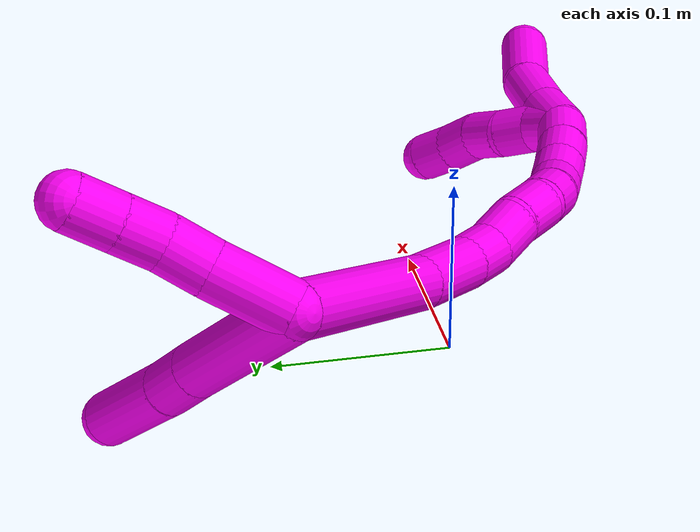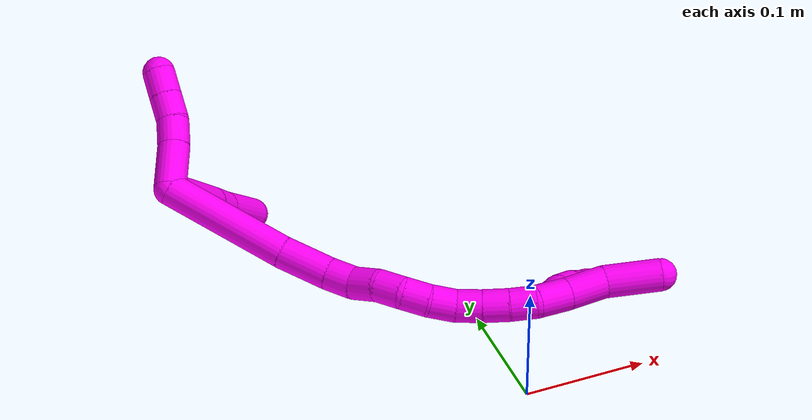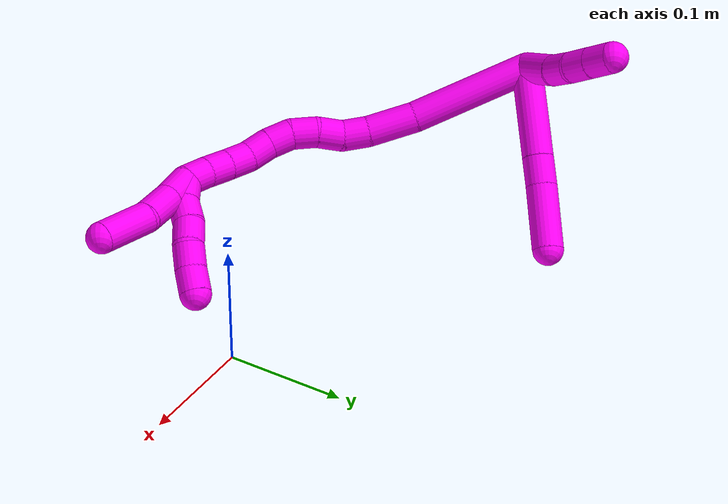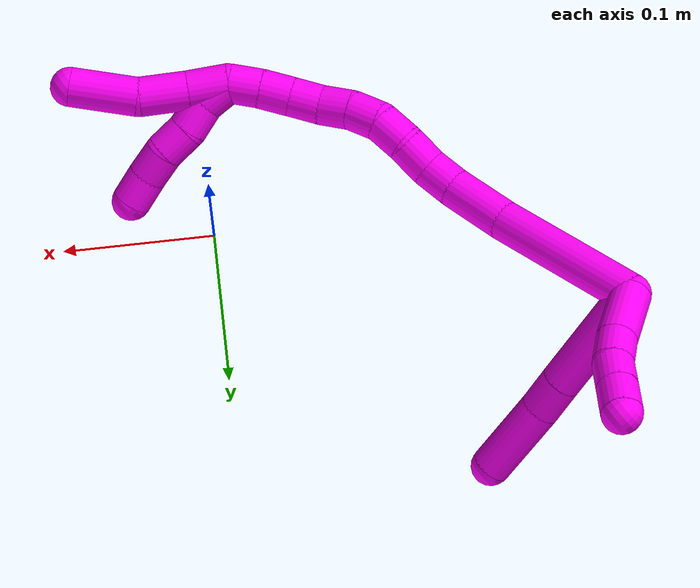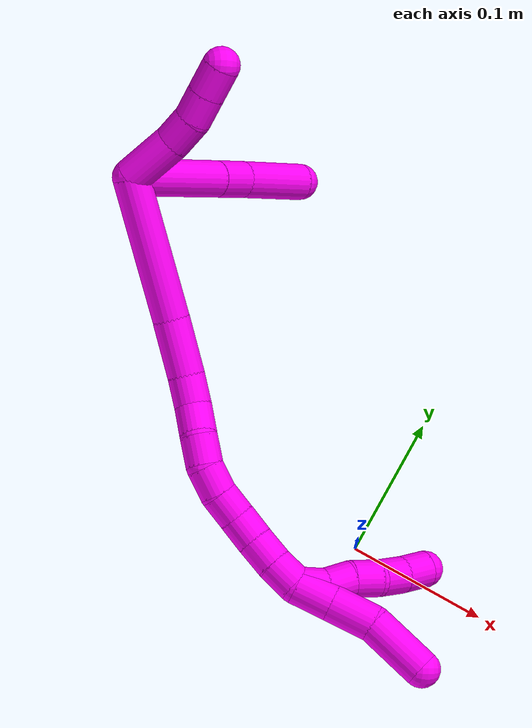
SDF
<sdf version="1.7">
 <world name="default">
  <model name="10">
   <static>0</static>
   <link name="10">
    <collision name="collision-cylinder-e_1_2_8">
     <pose>-0.012373 -0.009 -0.033911 2.88218 -0.339056 -1.83925</pose>
     <geometry><cylinder><radius>0.0125</radius><length>0.074405</length></cylinder></geometry>
     <surface>
      <friction><ode><mu>1.16</mu><mu2>1.16</mu2><slip1>0</slip1><slip2>0</slip2></ode></friction>
      <contact><ode><kp>1e+06</kp><kd>1</kd><max_vel>0</max_vel><min_depth>0.001</min_depth></ode></contact>
     </surface>
    </collision>
    <visual name="visual-cylinder-e_1_2_8">
     <pose>-0.012373 -0.009 -0.033911 2.88218 -0.339056 -1.83925</pose>
     <geometry><cylinder><radius>0.0125</radius><length>0.074405</length></cylinder></geometry>
     <material><ambient>1 0 0.964706 1</ambient></material>
    </visual>
    <collision name="collision-cylinder-e_2_8_9">
     <pose>-0.0289 -0.021053 -0.07847 2.86235 -0.358699 -1.82277</pose>
     <geometry><cylinder><radius>0.0125</radius><length>0.023662</length></cylinder></geometry>
     <surface>
      <friction><ode><mu>1.16</mu><mu2>1.16</mu2><slip1>0</slip1><slip2>0</slip2></ode></friction>
      <contact><ode><kp>1e+06</kp><kd>1</kd><max_vel>0</max_vel><min_depth>0.001</min_depth></ode></contact>
     </surface>
    </collision>
    <visual name="visual-cylinder-e_2_8_9">
     <pose>-0.0289 -0.021053 -0.07847 2.86235 -0.358699 -1.82277</pose>
     <geometry><cylinder><radius>0.0125</radius><length>0.023662</length></cylinder></geometry>
     <material><ambient>1 0 0.964706 1</ambient></material>
    </visual>
    <collision name="collision-cylinder-e_3_9_6">
     <pose>-0.040765 -0.030128 -0.113172 2.89627 -0.301511 -1.77811</pose>
     <geometry><cylinder><radius>0.0125</radius><length>0.051933</length></cylinder></geometry>
     <surface>
      <friction><ode><mu>1.16</mu><mu2>1.16</mu2><slip1>0</slip1><slip2>0</slip2></ode></friction>
      <contact><ode><kp>1e+06</kp><kd>1</kd><max_vel>0</max_vel><min_depth>0.001</min_depth></ode></contact>
     </surface>
    </collision>
    <visual name="visual-cylinder-e_3_9_6">
     <pose>-0.040765 -0.030128 -0.113172 2.89627 -0.301511 -1.77811</pose>
     <geometry><cylinder><radius>0.0125</radius><length>0.051933</length></cylinder></geometry>
     <material><ambient>1 0 0.964706 1</ambient></material>
    </visual>
    <collision name="collision-cylinder-e_1_2_10">
     <pose>-0.001131 0.015095 -0.010786 -2.19123 -0.060868 0.118204</pose>
     <geometry><cylinder><radius>0.0125</radius><length>0.037174</length></cylinder></geometry>
     <surface>
      <friction><ode><mu>1.16</mu><mu2>1.16</mu2><slip1>0</slip1><slip2>0</slip2></ode></friction>
      <contact><ode><kp>1e+06</kp><kd>1</kd><max_vel>0</max_vel><min_depth>0.001</min_depth></ode></contact>
     </surface>
    </collision>
    <visual name="visual-cylinder-e_1_2_10">
     <pose>-0.001131 0.015095 -0.010786 -2.19123 -0.060868 0.118204</pose>
     <geometry><cylinder><radius>0.0125</radius><length>0.037174</length></cylinder></geometry>
     <material><ambient>1 0 0.964706 1</ambient></material>
    </visual>
    <collision name="collision-cylinder-e_2_10_11">
     <pose>-0.002846 0.039858 -0.026243 -2.02076 -0.054353 0.086582</pose>
     <geometry><cylinder><radius>0.0125</radius><length>0.021506</length></cylinder></geometry>
     <surface>
      <friction><ode><mu>1.16</mu><mu2>1.16</mu2><slip1>0</slip1><slip2>0</slip2></ode></friction>
      <contact><ode><kp>1e+06</kp><kd>1</kd><max_vel>0</max_vel><min_depth>0.001</min_depth></ode></contact>
     </surface>
    </collision>
    <visual name="visual-cylinder-e_2_10_11">
     <pose>-0.002846 0.039858 -0.026243 -2.02076 -0.054353 0.086582</pose>
     <geometry><cylinder><radius>0.0125</radius><length>0.021506</length></cylinder></geometry>
     <material><ambient>1 0 0.964706 1</ambient></material>
    </visual>
    <collision name="collision-cylinder-e_3_11_12">
     <pose>-0.005515 0.058937 -0.033665 -1.85536 -0.209515 0.278784</pose>
     <geometry><cylinder><radius>0.0125</radius><length>0.020048</length></cylinder></geometry>
     <surface>
      <friction><ode><mu>1.16</mu><mu2>1.16</mu2><slip1>0</slip1><slip2>0</slip2></ode></friction>
      <contact><ode><kp>1e+06</kp><kd>1</kd><max_vel>0</max_vel><min_depth>0.001</min_depth></ode></contact>
     </surface>
    </collision>
    <visual name="visual-cylinder-e_3_11_12">
     <pose>-0.005515 0.058937 -0.033665 -1.85536 -0.209515 0.278784</pose>
     <geometry><cylinder><radius>0.0125</radius><length>0.020048</length></cylinder></geometry>
     <material><ambient>1 0 0.964706 1</ambient></material>
    </visual>
    <collision name="collision-cylinder-e_4_12_5">
     <pose>-0.009802 0.078326 -0.039368 -1.85833 -0.208601 0.278426</pose>
     <geometry><cylinder><radius>0.0125</radius><length>0.021272</length></cylinder></geometry>
     <surface>
      <friction><ode><mu>1.16</mu><mu2>1.16</mu2><slip1>0</slip1><slip2>0</slip2></ode></friction>
      <contact><ode><kp>1e+06</kp><kd>1</kd><max_vel>0</max_vel><min_depth>0.001</min_depth></ode></contact>
     </surface>
    </collision>
    <visual name="visual-cylinder-e_4_12_5">
     <pose>-0.009802 0.078326 -0.039368 -1.85833 -0.208601 0.278426</pose>
     <geometry><cylinder><radius>0.0125</radius><length>0.021272</length></cylinder></geometry>
     <material><ambient>1 0 0.964706 1</ambient></material>
    </visual>
    <collision name="collision-cylinder-e_1_2_13">
     <pose>0.028877 -0.035749 -0.016866 2.01161 0.630941 0.950901</pose>
     <geometry><cylinder><radius>0.0125</radius><length>0.097904</length></cylinder></geometry>
     <surface>
      <friction><ode><mu>1.16</mu><mu2>1.16</mu2><slip1>0</slip1><slip2>0</slip2></ode></friction>
      <contact><ode><kp>1e+06</kp><kd>1</kd><max_vel>0</max_vel><min_depth>0.001</min_depth></ode></contact>
     </surface>
    </collision>
    <visual name="visual-cylinder-e_1_2_13">
     <pose>0.028877 -0.035749 -0.016866 2.01161 0.630941 0.950901</pose>
     <geometry><cylinder><radius>0.0125</radius><length>0.097904</length></cylinder></geometry>
     <material><ambient>1 0 0.964706 1</ambient></material>
    </visual>
    <collision name="collision-cylinder-e_2_13_14">
     <pose>0.071167 -0.084503 -0.039605 1.99502 0.754416 1.10078</pose>
     <geometry><cylinder><radius>0.0125</radius><length>0.039168</length></cylinder></geometry>
     <surface>
      <friction><ode><mu>1.16</mu><mu2>1.16</mu2><slip1>0</slip1><slip2>0</slip2></ode></friction>
      <contact><ode><kp>1e+06</kp><kd>1</kd><max_vel>0</max_vel><min_depth>0.001</min_depth></ode></contact>
     </surface>
    </collision>
    <visual name="visual-cylinder-e_2_13_14">
     <pose>0.071167 -0.084503 -0.039605 1.99502 0.754416 1.10078</pose>
     <geometry><cylinder><radius>0.0125</radius><length>0.039168</length></cylinder></geometry>
     <material><ambient>1 0 0.964706 1</ambient></material>
    </visual>
    <collision name="collision-cylinder-e_3_14_15">
     <pose>0.092765 -0.103668 -0.047862 1.94006 0.891929 1.21832</pose>
     <geometry><cylinder><radius>0.0125</radius><length>0.021037</length></cylinder></geometry>
     <surface>
      <friction><ode><mu>1.16</mu><mu2>1.16</mu2><slip1>0</slip1><slip2>0</slip2></ode></friction>
      <contact><ode><kp>1e+06</kp><kd>1</kd><max_vel>0</max_vel><min_depth>0.001</min_depth></ode></contact>
     </surface>
    </collision>
    <visual name="visual-cylinder-e_3_14_15">
     <pose>0.092765 -0.103668 -0.047862 1.94006 0.891929 1.21832</pose>
     <geometry><cylinder><radius>0.0125</radius><length>0.021037</length></cylinder></geometry>
     <material><ambient>1 0 0.964706 1</ambient></material>
    </visual>
    <collision name="collision-cylinder-e_4_15_16">
     <pose>0.110937 -0.113302 -0.051071 1.80386 1.22737 1.45586</pose>
     <geometry><cylinder><radius>0.0125</radius><length>0.021209</length></cylinder></geometry>
     <surface>
      <friction><ode><mu>1.16</mu><mu2>1.16</mu2><slip1>0</slip1><slip2>0</slip2></ode></friction>
      <contact><ode><kp>1e+06</kp><kd>1</kd><max_vel>0</max_vel><min_depth>0.001</min_depth></ode></contact>
     </surface>
    </collision>
    <visual name="visual-cylinder-e_4_15_16">
     <pose>0.110937 -0.113302 -0.051071 1.80386 1.22737 1.45586</pose>
     <geometry><cylinder><radius>0.0125</radius><length>0.021209</length></cylinder></geometry>
     <material><ambient>1 0 0.964706 1</ambient></material>
    </visual>
    <collision name="collision-cylinder-e_5_16_17">
     <pose>0.129514 -0.122216 -0.053723 1.89492 0.981908 1.27878</pose>
     <geometry><cylinder><radius>0.0125</radius><length>0.020665</length></cylinder></geometry>
     <surface>
      <friction><ode><mu>1.16</mu><mu2>1.16</mu2><slip1>0</slip1><slip2>0</slip2></ode></friction>
      <contact><ode><kp>1e+06</kp><kd>1</kd><max_vel>0</max_vel><min_depth>0.001</min_depth></ode></contact>
     </surface>
    </collision>
    <visual name="visual-cylinder-e_5_16_17">
     <pose>0.129514 -0.122216 -0.053723 1.89492 0.981908 1.27878</pose>
     <geometry><cylinder><radius>0.0125</radius><length>0.020665</length></cylinder></geometry>
     <material><ambient>1 0 0.964706 1</ambient></material>
    </visual>
    <collision name="collision-cylinder-e_6_17_18">
     <pose>0.144879 -0.133294 -0.060284 2.26913 0.743791 1.39342</pose>
     <geometry><cylinder><radius>0.0125</radius><length>0.020005</length></cylinder></geometry>
     <surface>
      <friction><ode><mu>1.16</mu><mu2>1.16</mu2><slip1>0</slip1><slip2>0</slip2></ode></friction>
      <contact><ode><kp>1e+06</kp><kd>1</kd><max_vel>0</max_vel><min_depth>0.001</min_depth></ode></contact>
     </surface>
    </collision>
    <visual name="visual-cylinder-e_6_17_18">
     <pose>0.144879 -0.133294 -0.060284 2.26913 0.743791 1.39342</pose>
     <geometry><cylinder><radius>0.0125</radius><length>0.020005</length></cylinder></geometry>
     <material><ambient>1 0 0.964706 1</ambient></material>
    </visual>
    <collision name="collision-cylinder-e_7_18_19">
     <pose>0.157583 -0.143762 -0.071459 2.49835 0.634896 1.5568</pose>
     <geometry><cylinder><radius>0.0125</radius><length>0.020001</length></cylinder></geometry>
     <surface>
      <friction><ode><mu>1.16</mu><mu2>1.16</mu2><slip1>0</slip1><slip2>0</slip2></ode></friction>
      <contact><ode><kp>1e+06</kp><kd>1</kd><max_vel>0</max_vel><min_depth>0.001</min_depth></ode></contact>
     </surface>
    </collision>
    <visual name="visual-cylinder-e_7_18_19">
     <pose>0.157583 -0.143762 -0.071459 2.49835 0.634896 1.5568</pose>
     <geometry><cylinder><radius>0.0125</radius><length>0.020001</length></cylinder></geometry>
     <material><ambient>1 0 0.964706 1</ambient></material>
    </visual>
    <collision name="collision-cylinder-e_8_19_20">
     <pose>0.171013 -0.151833 -0.083671 2.62966 0.847727 2.09042</pose>
     <geometry><cylinder><radius>0.0125</radius><length>0.020003</length></cylinder></geometry>
     <surface>
      <friction><ode><mu>1.16</mu><mu2>1.16</mu2><slip1>0</slip1><slip2>0</slip2></ode></friction>
      <contact><ode><kp>1e+06</kp><kd>1</kd><max_vel>0</max_vel><min_depth>0.001</min_depth></ode></contact>
     </surface>
    </collision>
    <visual name="visual-cylinder-e_8_19_20">
     <pose>0.171013 -0.151833 -0.083671 2.62966 0.847727 2.09042</pose>
     <geometry><cylinder><radius>0.0125</radius><length>0.020003</length></cylinder></geometry>
     <material><ambient>1 0 0.964706 1</ambient></material>
    </visual>
    <collision name="collision-cylinder-e_9_20_21">
     <pose>0.186199 -0.15775 -0.095252 2.71011 0.876674 2.26692</pose>
     <geometry><cylinder><radius>0.0125</radius><length>0.020002</length></cylinder></geometry>
     <surface>
      <friction><ode><mu>1.16</mu><mu2>1.16</mu2><slip1>0</slip1><slip2>0</slip2></ode></friction>
      <contact><ode><kp>1e+06</kp><kd>1</kd><max_vel>0</max_vel><min_depth>0.001</min_depth></ode></contact>
     </surface>
    </collision>
    <visual name="visual-cylinder-e_9_20_21">
     <pose>0.186199 -0.15775 -0.095252 2.71011 0.876674 2.26692</pose>
     <geometry><cylinder><radius>0.0125</radius><length>0.020002</length></cylinder></geometry>
     <material><ambient>1 0 0.964706 1</ambient></material>
    </visual>
    <collision name="collision-cylinder-e_10_21_1">
     <pose>0.201232 -0.162468 -0.107538 2.83613 0.824839 2.46497</pose>
     <geometry><cylinder><radius>0.0125</radius><length>0.020005</length></cylinder></geometry>
     <surface>
      <friction><ode><mu>1.16</mu><mu2>1.16</mu2><slip1>0</slip1><slip2>0</slip2></ode></friction>
      <contact><ode><kp>1e+06</kp><kd>1</kd><max_vel>0</max_vel><min_depth>0.001</min_depth></ode></contact>
     </surface>
    </collision>
    <visual name="visual-cylinder-e_10_21_1">
     <pose>0.201232 -0.162468 -0.107538 2.83613 0.824839 2.46497</pose>
     <geometry><cylinder><radius>0.0125</radius><length>0.020005</length></cylinder></geometry>
     <material><ambient>1 0 0.964706 1</ambient></material>
    </visual>
    <collision name="collision-cylinder-e_1_1_22">
     <pose>0.208574 -0.165141 -0.123992 3.07839 -0.000494 -0.015636</pose>
     <geometry><cylinder><radius>0.0125</radius><length>0.02</length></cylinder></geometry>
     <surface>
      <friction><ode><mu>1.16</mu><mu2>1.16</mu2><slip1>0</slip1><slip2>0</slip2></ode></friction>
      <contact><ode><kp>1e+06</kp><kd>1</kd><max_vel>0</max_vel><min_depth>0.001</min_depth></ode></contact>
     </surface>
    </collision>
    <visual name="visual-cylinder-e_1_1_22">
     <pose>0.208574 -0.165141 -0.123992 3.07839 -0.000494 -0.015636</pose>
     <geometry><cylinder><radius>0.0125</radius><length>0.02</length></cylinder></geometry>
     <material><ambient>1 0 0.964706 1</ambient></material>
    </visual>
    <collision name="collision-cylinder-e_2_22_23">
     <pose>0.205815 -0.164708 -0.143526 -3.03061 -0.278959 2.38807</pose>
     <geometry><cylinder><radius>0.0125</radius><length>0.02</length></cylinder></geometry>
     <surface>
      <friction><ode><mu>1.16</mu><mu2>1.16</mu2><slip1>0</slip1><slip2>0</slip2></ode></friction>
      <contact><ode><kp>1e+06</kp><kd>1</kd><max_vel>0</max_vel><min_depth>0.001</min_depth></ode></contact>
     </surface>
    </collision>
    <visual name="visual-cylinder-e_2_22_23">
     <pose>0.205815 -0.164708 -0.143526 -3.03061 -0.278959 2.38807</pose>
     <geometry><cylinder><radius>0.0125</radius><length>0.02</length></cylinder></geometry>
     <material><ambient>1 0 0.964706 1</ambient></material>
    </visual>
    <collision name="collision-cylinder-e_3_23_24">
     <pose>0.202334 -0.163963 -0.163049 3.10949 -0.072832 -2.31164</pose>
     <geometry><cylinder><radius>0.0125</radius><length>0.02</length></cylinder></geometry>
     <surface>
      <friction><ode><mu>1.16</mu><mu2>1.16</mu2><slip1>0</slip1><slip2>0</slip2></ode></friction>
      <contact><ode><kp>1e+06</kp><kd>1</kd><max_vel>0</max_vel><min_depth>0.001</min_depth></ode></contact>
     </surface>
    </collision>
    <visual name="visual-cylinder-e_3_23_24">
     <pose>0.202334 -0.163963 -0.163049 3.10949 -0.072832 -2.31164</pose>
     <geometry><cylinder><radius>0.0125</radius><length>0.02</length></cylinder></geometry>
     <material><ambient>1 0 0.964706 1</ambient></material>
    </visual>
    <collision name="collision-cylinder-e_4_24_25">
     <pose>0.198625 -0.165831 -0.182436 2.97871 -0.302745 -2.15892</pose>
     <geometry><cylinder><radius>0.0125</radius><length>0.02</length></cylinder></geometry>
     <surface>
      <friction><ode><mu>1.16</mu><mu2>1.16</mu2><slip1>0</slip1><slip2>0</slip2></ode></friction>
      <contact><ode><kp>1e+06</kp><kd>1</kd><max_vel>0</max_vel><min_depth>0.001</min_depth></ode></contact>
     </surface>
    </collision>
    <visual name="visual-cylinder-e_4_24_25">
     <pose>0.198625 -0.165831 -0.182436 2.97871 -0.302745 -2.15892</pose>
     <geometry><cylinder><radius>0.0125</radius><length>0.02</length></cylinder></geometry>
     <material><ambient>1 0 0.964706 1</ambient></material>
    </visual>
    <collision name="collision-cylinder-e_5_25_4">
     <pose>0.192408 -0.167932 -0.201301 3.08314 -0.329489 -2.79344</pose>
     <geometry><cylinder><radius>0.0125</radius><length>0.02</length></cylinder></geometry>
     <surface>
      <friction><ode><mu>1.16</mu><mu2>1.16</mu2><slip1>0</slip1><slip2>0</slip2></ode></friction>
      <contact><ode><kp>1e+06</kp><kd>1</kd><max_vel>0</max_vel><min_depth>0.001</min_depth></ode></contact>
     </surface>
    </collision>
    <visual name="visual-cylinder-e_5_25_4">
     <pose>0.192408 -0.167932 -0.201301 3.08314 -0.329489 -2.79344</pose>
     <geometry><cylinder><radius>0.0125</radius><length>0.02</length></cylinder></geometry>
     <material><ambient>1 0 0.964706 1</ambient></material>
    </visual>
    <collision name="collision-cylinder-e_1_1_26">
     <pose>0.215036 -0.165508 -0.125158 3.05224 0.523354 2.81078</pose>
     <geometry><cylinder><radius>0.0125</radius><length>0.02584</length></cylinder></geometry>
     <surface>
      <friction><ode><mu>1.16</mu><mu2>1.16</mu2><slip1>0</slip1><slip2>0</slip2></ode></friction>
      <contact><ode><kp>1e+06</kp><kd>1</kd><max_vel>0</max_vel><min_depth>0.001</min_depth></ode></contact>
     </surface>
    </collision>
    <visual name="visual-cylinder-e_1_1_26">
     <pose>0.215036 -0.165508 -0.125158 3.05224 0.523354 2.81078</pose>
     <geometry><cylinder><radius>0.0125</radius><length>0.02584</length></cylinder></geometry>
     <material><ambient>1 0 0.964706 1</ambient></material>
    </visual>
    <collision name="collision-cylinder-e_2_26_27">
     <pose>0.230189 -0.166701 -0.149139 3.12642 0.595399 3.09215</pose>
     <geometry><cylinder><radius>0.0125</radius><length>0.03101</length></cylinder></geometry>
     <surface>
      <friction><ode><mu>1.16</mu><mu2>1.16</mu2><slip1>0</slip1><slip2>0</slip2></ode></friction>
      <contact><ode><kp>1e+06</kp><kd>1</kd><max_vel>0</max_vel><min_depth>0.001</min_depth></ode></contact>
     </surface>
    </collision>
    <visual name="visual-cylinder-e_2_26_27">
     <pose>0.230189 -0.166701 -0.149139 3.12642 0.595399 3.09215</pose>
     <geometry><cylinder><radius>0.0125</radius><length>0.03101</length></cylinder></geometry>
     <material><ambient>1 0 0.964706 1</ambient></material>
    </visual>
    <collision name="collision-cylinder-e_3_27_3">
     <pose>0.25451 -0.171047 -0.176262 2.8588 0.809892 2.50034</pose>
     <geometry><cylinder><radius>0.0125</radius><length>0.04315</length></cylinder></geometry>
     <surface>
      <friction><ode><mu>1.16</mu><mu2>1.16</mu2><slip1>0</slip1><slip2>0</slip2></ode></friction>
      <contact><ode><kp>1e+06</kp><kd>1</kd><max_vel>0</max_vel><min_depth>0.001</min_depth></ode></contact>
     </surface>
    </collision>
    <visual name="visual-cylinder-e_3_27_3">
     <pose>0.25451 -0.171047 -0.176262 2.8588 0.809892 2.50034</pose>
     <geometry><cylinder><radius>0.0125</radius><length>0.04315</length></cylinder></geometry>
     <material><ambient>1 0 0.964706 1</ambient></material>
    </visual>
    <collision name="collision-sphere-3">
     <pose>0.270134 -0.175199 -0.190548 0 -0 0</pose>
     <geometry><sphere><radius>0.0125</radius></sphere></geometry>
     <surface>
      <friction><ode><mu>1.16</mu><mu2>1.16</mu2><slip1>0</slip1><slip2>0</slip2></ode></friction>
      <contact><ode><kp>1e+06</kp><kd>1</kd><max_vel>0</max_vel><min_depth>0.001</min_depth></ode></contact>
     </surface>
    </collision>
    <visual name="visual-sphere-3">
     <pose>0.270134 -0.175199 -0.190548 0 -0 0</pose>
     <geometry><sphere><radius>0.0125</radius></sphere></geometry>
     <material><ambient>1 0 0.964706 1</ambient></material>
    </visual>
    <collision name="collision-sphere-27">
     <pose>0.238885 -0.166896 -0.161975 0 -0 0</pose>
     <geometry><sphere><radius>0.0125</radius></sphere></geometry>
     <surface>
      <friction><ode><mu>1.16</mu><mu2>1.16</mu2><slip1>0</slip1><slip2>0</slip2></ode></friction>
      <contact><ode><kp>1e+06</kp><kd>1</kd><max_vel>0</max_vel><min_depth>0.001</min_depth></ode></contact>
     </surface>
    </collision>
    <visual name="visual-sphere-27">
     <pose>0.238885 -0.166896 -0.161975 0 -0 0</pose>
     <geometry><sphere><radius>0.0125</radius></sphere></geometry>
     <material><ambient>1 0 0.964706 1</ambient></material>
    </visual>
    <collision name="collision-sphere-26">
     <pose>0.221493 -0.166506 -0.136304 0 -0 0</pose>
     <geometry><sphere><radius>0.0125</radius></sphere></geometry>
     <surface>
      <friction><ode><mu>1.16</mu><mu2>1.16</mu2><slip1>0</slip1><slip2>0</slip2></ode></friction>
      <contact><ode><kp>1e+06</kp><kd>1</kd><max_vel>0</max_vel><min_depth>0.001</min_depth></ode></contact>
     </surface>
    </collision>
    <visual name="visual-sphere-26">
     <pose>0.221493 -0.166506 -0.136304 0 -0 0</pose>
     <geometry><sphere><radius>0.0125</radius></sphere></geometry>
     <material><ambient>1 0 0.964706 1</ambient></material>
    </visual>
    <collision name="collision-sphere-4">
     <pose>0.189172 -0.168485 -0.210747 0 -0 0</pose>
     <geometry><sphere><radius>0.0125</radius></sphere></geometry>
     <surface>
      <friction><ode><mu>1.16</mu><mu2>1.16</mu2><slip1>0</slip1><slip2>0</slip2></ode></friction>
      <contact><ode><kp>1e+06</kp><kd>1</kd><max_vel>0</max_vel><min_depth>0.001</min_depth></ode></contact>
     </surface>
    </collision>
    <visual name="visual-sphere-4">
     <pose>0.189172 -0.168485 -0.210747 0 -0 0</pose>
     <geometry><sphere><radius>0.0125</radius></sphere></geometry>
     <material><ambient>1 0 0.964706 1</ambient></material>
    </visual>
    <collision name="collision-sphere-25">
     <pose>0.195643 -0.167379 -0.191855 0 -0 0</pose>
     <geometry><sphere><radius>0.0125</radius></sphere></geometry>
     <surface>
      <friction><ode><mu>1.16</mu><mu2>1.16</mu2><slip1>0</slip1><slip2>0</slip2></ode></friction>
      <contact><ode><kp>1e+06</kp><kd>1</kd><max_vel>0</max_vel><min_depth>0.001</min_depth></ode></contact>
     </surface>
    </collision>
    <visual name="visual-sphere-25">
     <pose>0.195643 -0.167379 -0.191855 0 -0 0</pose>
     <geometry><sphere><radius>0.0125</radius></sphere></geometry>
     <material><ambient>1 0 0.964706 1</ambient></material>
    </visual>
    <collision name="collision-sphere-24">
     <pose>0.201606 -0.164283 -0.173017 0 -0 0</pose>
     <geometry><sphere><radius>0.0125</radius></sphere></geometry>
     <surface>
      <friction><ode><mu>1.16</mu><mu2>1.16</mu2><slip1>0</slip1><slip2>0</slip2></ode></friction>
      <contact><ode><kp>1e+06</kp><kd>1</kd><max_vel>0</max_vel><min_depth>0.001</min_depth></ode></contact>
     </surface>
    </collision>
    <visual name="visual-sphere-24">
     <pose>0.201606 -0.164283 -0.173017 0 -0 0</pose>
     <geometry><sphere><radius>0.0125</radius></sphere></geometry>
     <material><ambient>1 0 0.964706 1</ambient></material>
    </visual>
    <collision name="collision-sphere-23">
     <pose>0.203062 -0.163643 -0.153081 0 -0 0</pose>
     <geometry><sphere><radius>0.0125</radius></sphere></geometry>
     <surface>
      <friction><ode><mu>1.16</mu><mu2>1.16</mu2><slip1>0</slip1><slip2>0</slip2></ode></friction>
      <contact><ode><kp>1e+06</kp><kd>1</kd><max_vel>0</max_vel><min_depth>0.001</min_depth></ode></contact>
     </surface>
    </collision>
    <visual name="visual-sphere-23">
     <pose>0.203062 -0.163643 -0.153081 0 -0 0</pose>
     <geometry><sphere><radius>0.0125</radius></sphere></geometry>
     <material><ambient>1 0 0.964706 1</ambient></material>
    </visual>
    <collision name="collision-sphere-22">
     <pose>0.208569 -0.165772 -0.133972 0 -0 0</pose>
     <geometry><sphere><radius>0.0125</radius></sphere></geometry>
     <surface>
      <friction><ode><mu>1.16</mu><mu2>1.16</mu2><slip1>0</slip1><slip2>0</slip2></ode></friction>
      <contact><ode><kp>1e+06</kp><kd>1</kd><max_vel>0</max_vel><min_depth>0.001</min_depth></ode></contact>
     </surface>
    </collision>
    <visual name="visual-sphere-22">
     <pose>0.208569 -0.165772 -0.133972 0 -0 0</pose>
     <geometry><sphere><radius>0.0125</radius></sphere></geometry>
     <material><ambient>1 0 0.964706 1</ambient></material>
    </visual>
    <collision name="collision-sphere-1">
     <pose>0.208578 -0.164509 -0.114012 0 -0 0</pose>
     <geometry><sphere><radius>0.0125</radius></sphere></geometry>
     <surface>
      <friction><ode><mu>1.16</mu><mu2>1.16</mu2><slip1>0</slip1><slip2>0</slip2></ode></friction>
      <contact><ode><kp>1e+06</kp><kd>1</kd><max_vel>0</max_vel><min_depth>0.001</min_depth></ode></contact>
     </surface>
    </collision>
    <visual name="visual-sphere-1">
     <pose>0.208578 -0.164509 -0.114012 0 -0 0</pose>
     <geometry><sphere><radius>0.0125</radius></sphere></geometry>
     <material><ambient>1 0 0.964706 1</ambient></material>
    </visual>
    <collision name="collision-sphere-21">
     <pose>0.193886 -0.160426 -0.101063 0 -0 0</pose>
     <geometry><sphere><radius>0.0125</radius></sphere></geometry>
     <surface>
      <friction><ode><mu>1.16</mu><mu2>1.16</mu2><slip1>0</slip1><slip2>0</slip2></ode></friction>
      <contact><ode><kp>1e+06</kp><kd>1</kd><max_vel>0</max_vel><min_depth>0.001</min_depth></ode></contact>
     </surface>
    </collision>
    <visual name="visual-sphere-21">
     <pose>0.193886 -0.160426 -0.101063 0 -0 0</pose>
     <geometry><sphere><radius>0.0125</radius></sphere></geometry>
     <material><ambient>1 0 0.964706 1</ambient></material>
    </visual>
    <collision name="collision-sphere-11">
     <pose>-0.00343 0.049527 -0.030913 0 -0 0</pose>
     <geometry><sphere><radius>0.0125</radius></sphere></geometry>
     <surface>
      <friction><ode><mu>1.16</mu><mu2>1.16</mu2><slip1>0</slip1><slip2>0</slip2></ode></friction>
      <contact><ode><kp>1e+06</kp><kd>1</kd><max_vel>0</max_vel><min_depth>0.001</min_depth></ode></contact>
     </surface>
    </collision>
    <visual name="visual-sphere-11">
     <pose>-0.00343 0.049527 -0.030913 0 -0 0</pose>
     <geometry><sphere><radius>0.0125</radius></sphere></geometry>
     <material><ambient>1 0 0.964706 1</ambient></material>
    </visual>
    <collision name="collision-sphere-10">
     <pose>-0.002261 0.03019 -0.021573 0 -0 0</pose>
     <geometry><sphere><radius>0.0125</radius></sphere></geometry>
     <surface>
      <friction><ode><mu>1.16</mu><mu2>1.16</mu2><slip1>0</slip1><slip2>0</slip2></ode></friction>
      <contact><ode><kp>1e+06</kp><kd>1</kd><max_vel>0</max_vel><min_depth>0.001</min_depth></ode></contact>
     </surface>
    </collision>
    <visual name="visual-sphere-10">
     <pose>-0.002261 0.03019 -0.021573 0 -0 0</pose>
     <geometry><sphere><radius>0.0125</radius></sphere></geometry>
     <material><ambient>1 0 0.964706 1</ambient></material>
    </visual>
    <collision name="collision-sphere-6">
     <pose>-0.048476 -0.03615 -0.137224 0 -0 0</pose>
     <geometry><sphere><radius>0.0125</radius></sphere></geometry>
     <surface>
      <friction><ode><mu>1.16</mu><mu2>1.16</mu2><slip1>0</slip1><slip2>0</slip2></ode></friction>
      <contact><ode><kp>1e+06</kp><kd>1</kd><max_vel>0</max_vel><min_depth>0.001</min_depth></ode></contact>
     </surface>
    </collision>
    <visual name="visual-sphere-6">
     <pose>-0.048476 -0.03615 -0.137224 0 -0 0</pose>
     <geometry><sphere><radius>0.0125</radius></sphere></geometry>
     <material><ambient>1 0 0.964706 1</ambient></material>
    </visual>
    <collision name="collision-sphere-9">
     <pose>-0.033054 -0.024106 -0.089119 0 -0 0</pose>
     <geometry><sphere><radius>0.0125</radius></sphere></geometry>
     <surface>
      <friction><ode><mu>1.16</mu><mu2>1.16</mu2><slip1>0</slip1><slip2>0</slip2></ode></friction>
      <contact><ode><kp>1e+06</kp><kd>1</kd><max_vel>0</max_vel><min_depth>0.001</min_depth></ode></contact>
     </surface>
    </collision>
    <visual name="visual-sphere-9">
     <pose>-0.033054 -0.024106 -0.089119 0 -0 0</pose>
     <geometry><sphere><radius>0.0125</radius></sphere></geometry>
     <material><ambient>1 0 0.964706 1</ambient></material>
    </visual>
    <collision name="collision-sphere-2">
     <geometry><sphere><radius>0.0125</radius></sphere></geometry>
     <surface>
      <friction><ode><mu>1.16</mu><mu2>1.16</mu2><slip1>0</slip1><slip2>0</slip2></ode></friction>
      <contact><ode><kp>1e+06</kp><kd>1</kd><max_vel>0</max_vel><min_depth>0.001</min_depth></ode></contact>
     </surface>
    </collision>
    <visual name="visual-sphere-2">
     <geometry><sphere><radius>0.0125</radius></sphere></geometry>
     <material><ambient>1 0 0.964706 1</ambient></material>
    </visual>
    <collision name="collision-sphere-19">
     <pose>0.163514 -0.148591 -0.077902 0 -0 0</pose>
     <geometry><sphere><radius>0.0125</radius></sphere></geometry>
     <surface>
      <friction><ode><mu>1.16</mu><mu2>1.16</mu2><slip1>0</slip1><slip2>0</slip2></ode></friction>
      <contact><ode><kp>1e+06</kp><kd>1</kd><max_vel>0</max_vel><min_depth>0.001</min_depth></ode></contact>
     </surface>
    </collision>
    <visual name="visual-sphere-19">
     <pose>0.163514 -0.148591 -0.077902 0 -0 0</pose>
     <geometry><sphere><radius>0.0125</radius></sphere></geometry>
     <material><ambient>1 0 0.964706 1</ambient></material>
    </visual>
    <collision name="collision-sphere-8">
     <pose>-0.024747 -0.018 -0.067821 0 -0 0</pose>
     <geometry><sphere><radius>0.0125</radius></sphere></geometry>
     <surface>
      <friction><ode><mu>1.16</mu><mu2>1.16</mu2><slip1>0</slip1><slip2>0</slip2></ode></friction>
      <contact><ode><kp>1e+06</kp><kd>1</kd><max_vel>0</max_vel><min_depth>0.001</min_depth></ode></contact>
     </surface>
    </collision>
    <visual name="visual-sphere-8">
     <pose>-0.024747 -0.018 -0.067821 0 -0 0</pose>
     <geometry><sphere><radius>0.0125</radius></sphere></geometry>
     <material><ambient>1 0 0.964706 1</ambient></material>
    </visual>
    <collision name="collision-sphere-12">
     <pose>-0.007599 0.068348 -0.036418 0 -0 0</pose>
     <geometry><sphere><radius>0.0125</radius></sphere></geometry>
     <surface>
      <friction><ode><mu>1.16</mu><mu2>1.16</mu2><slip1>0</slip1><slip2>0</slip2></ode></friction>
      <contact><ode><kp>1e+06</kp><kd>1</kd><max_vel>0</max_vel><min_depth>0.001</min_depth></ode></contact>
     </surface>
    </collision>
    <visual name="visual-sphere-12">
     <pose>-0.007599 0.068348 -0.036418 0 -0 0</pose>
     <geometry><sphere><radius>0.0125</radius></sphere></geometry>
     <material><ambient>1 0 0.964706 1</ambient></material>
    </visual>
    <collision name="collision-sphere-5">
     <pose>-0.012005 0.088304 -0.042319 0 -0 0</pose>
     <geometry><sphere><radius>0.0125</radius></sphere></geometry>
     <surface>
      <friction><ode><mu>1.16</mu><mu2>1.16</mu2><slip1>0</slip1><slip2>0</slip2></ode></friction>
      <contact><ode><kp>1e+06</kp><kd>1</kd><max_vel>0</max_vel><min_depth>0.001</min_depth></ode></contact>
     </surface>
    </collision>
    <visual name="visual-sphere-5">
     <pose>-0.012005 0.088304 -0.042319 0 -0 0</pose>
     <geometry><sphere><radius>0.0125</radius></sphere></geometry>
     <material><ambient>1 0 0.964706 1</ambient></material>
    </visual>
    <collision name="collision-sphere-13">
     <pose>0.057754 -0.071498 -0.033731 0 -0 0</pose>
     <geometry><sphere><radius>0.0125</radius></sphere></geometry>
     <surface>
      <friction><ode><mu>1.16</mu><mu2>1.16</mu2><slip1>0</slip1><slip2>0</slip2></ode></friction>
      <contact><ode><kp>1e+06</kp><kd>1</kd><max_vel>0</max_vel><min_depth>0.001</min_depth></ode></contact>
     </surface>
    </collision>
    <visual name="visual-sphere-13">
     <pose>0.057754 -0.071498 -0.033731 0 -0 0</pose>
     <geometry><sphere><radius>0.0125</radius></sphere></geometry>
     <material><ambient>1 0 0.964706 1</ambient></material>
    </visual>
    <collision name="collision-sphere-14">
     <pose>0.084579 -0.097509 -0.045479 0 -0 0</pose>
     <geometry><sphere><radius>0.0125</radius></sphere></geometry>
     <surface>
      <friction><ode><mu>1.16</mu><mu2>1.16</mu2><slip1>0</slip1><slip2>0</slip2></ode></friction>
      <contact><ode><kp>1e+06</kp><kd>1</kd><max_vel>0</max_vel><min_depth>0.001</min_depth></ode></contact>
     </surface>
    </collision>
    <visual name="visual-sphere-14">
     <pose>0.084579 -0.097509 -0.045479 0 -0 0</pose>
     <geometry><sphere><radius>0.0125</radius></sphere></geometry>
     <material><ambient>1 0 0.964706 1</ambient></material>
    </visual>
    <collision name="collision-sphere-15">
     <pose>0.100952 -0.109828 -0.050246 0 -0 0</pose>
     <geometry><sphere><radius>0.0125</radius></sphere></geometry>
     <surface>
      <friction><ode><mu>1.16</mu><mu2>1.16</mu2><slip1>0</slip1><slip2>0</slip2></ode></friction>
      <contact><ode><kp>1e+06</kp><kd>1</kd><max_vel>0</max_vel><min_depth>0.001</min_depth></ode></contact>
     </surface>
    </collision>
    <visual name="visual-sphere-15">
     <pose>0.100952 -0.109828 -0.050246 0 -0 0</pose>
     <geometry><sphere><radius>0.0125</radius></sphere></geometry>
     <material><ambient>1 0 0.964706 1</ambient></material>
    </visual>
    <collision name="collision-sphere-16">
     <pose>0.120922 -0.116776 -0.051896 0 -0 0</pose>
     <geometry><sphere><radius>0.0125</radius></sphere></geometry>
     <surface>
      <friction><ode><mu>1.16</mu><mu2>1.16</mu2><slip1>0</slip1><slip2>0</slip2></ode></friction>
      <contact><ode><kp>1e+06</kp><kd>1</kd><max_vel>0</max_vel><min_depth>0.001</min_depth></ode></contact>
     </surface>
    </collision>
    <visual name="visual-sphere-16">
     <pose>0.120922 -0.116776 -0.051896 0 -0 0</pose>
     <geometry><sphere><radius>0.0125</radius></sphere></geometry>
     <material><ambient>1 0 0.964706 1</ambient></material>
    </visual>
    <collision name="collision-sphere-17">
     <pose>0.138107 -0.127656 -0.055551 0 -0 0</pose>
     <geometry><sphere><radius>0.0125</radius></sphere></geometry>
     <surface>
      <friction><ode><mu>1.16</mu><mu2>1.16</mu2><slip1>0</slip1><slip2>0</slip2></ode></friction>
      <contact><ode><kp>1e+06</kp><kd>1</kd><max_vel>0</max_vel><min_depth>0.001</min_depth></ode></contact>
     </surface>
    </collision>
    <visual name="visual-sphere-17">
     <pose>0.138107 -0.127656 -0.055551 0 -0 0</pose>
     <geometry><sphere><radius>0.0125</radius></sphere></geometry>
     <material><ambient>1 0 0.964706 1</ambient></material>
    </visual>
    <collision name="collision-sphere-18">
     <pose>0.151652 -0.138932 -0.065016 0 -0 0</pose>
     <geometry><sphere><radius>0.0125</radius></sphere></geometry>
     <surface>
      <friction><ode><mu>1.16</mu><mu2>1.16</mu2><slip1>0</slip1><slip2>0</slip2></ode></friction>
      <contact><ode><kp>1e+06</kp><kd>1</kd><max_vel>0</max_vel><min_depth>0.001</min_depth></ode></contact>
     </surface>
    </collision>
    <visual name="visual-sphere-18">
     <pose>0.151652 -0.138932 -0.065016 0 -0 0</pose>
     <geometry><sphere><radius>0.0125</radius></sphere></geometry>
     <material><ambient>1 0 0.964706 1</ambient></material>
    </visual>
    <collision name="collision-sphere-20">
     <pose>0.178512 -0.155075 -0.089441 0 -0 0</pose>
     <geometry><sphere><radius>0.0125</radius></sphere></geometry>
     <surface>
      <friction><ode><mu>1.16</mu><mu2>1.16</mu2><slip1>0</slip1><slip2>0</slip2></ode></friction>
      <contact><ode><kp>1e+06</kp><kd>1</kd><max_vel>0</max_vel><min_depth>0.001</min_depth></ode></contact>
     </surface>
    </collision>
    <visual name="visual-sphere-20">
     <pose>0.178512 -0.155075 -0.089441 0 -0 0</pose>
     <geometry><sphere><radius>0.0125</radius></sphere></geometry>
     <material><ambient>1 0 0.964706 1</ambient></material>
    </visual>
    <inertial>
     <pose>0.092673 -0.080998 -0.079005 0 -0 0</pose>
     <mass>0.75</mass>
     <inertia><ixx>6.1e-05</ixx><ixy>0</ixy><ixz>0</ixz><iyy>6.5e-05</iyy><iyz>0</iyz><izz>-1.3e-05</izz></inertia>
    </inertial>
   </link>
   <pose>-0.242782 0.126936 0.182605 1.1661 -0.601252 -0.813688</pose>
  </model>
 </world>
</sdf>
